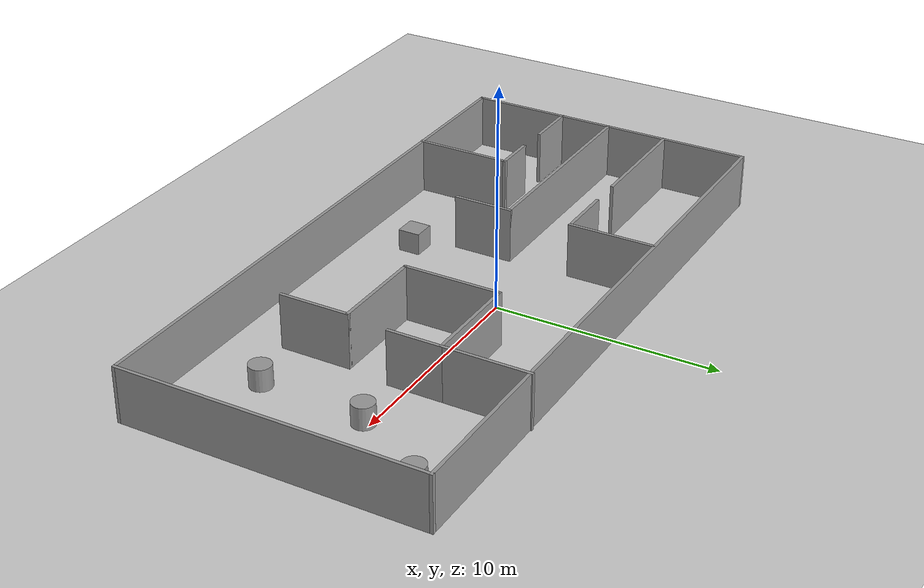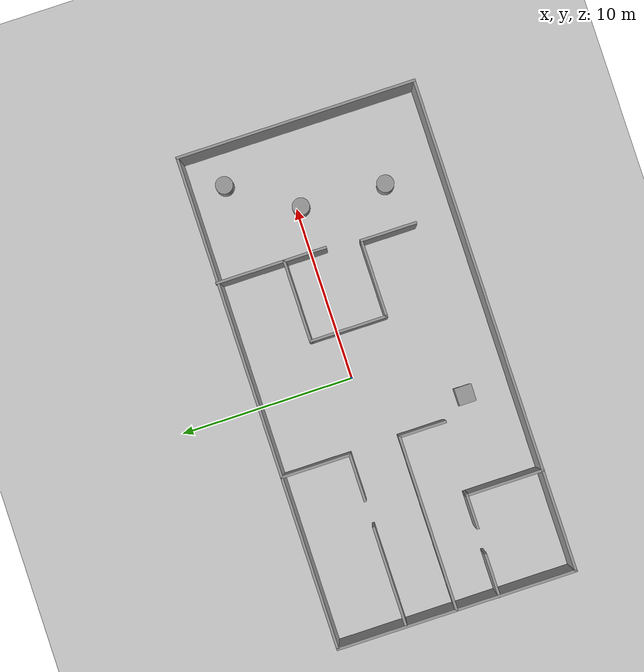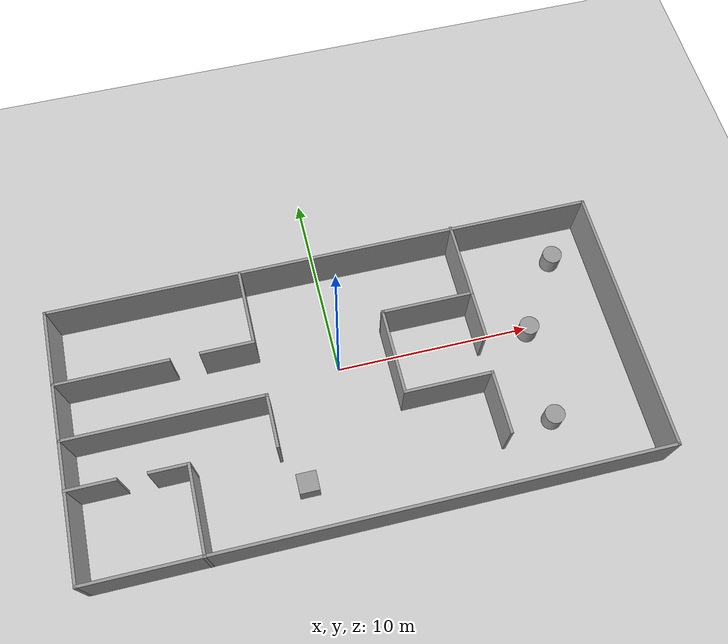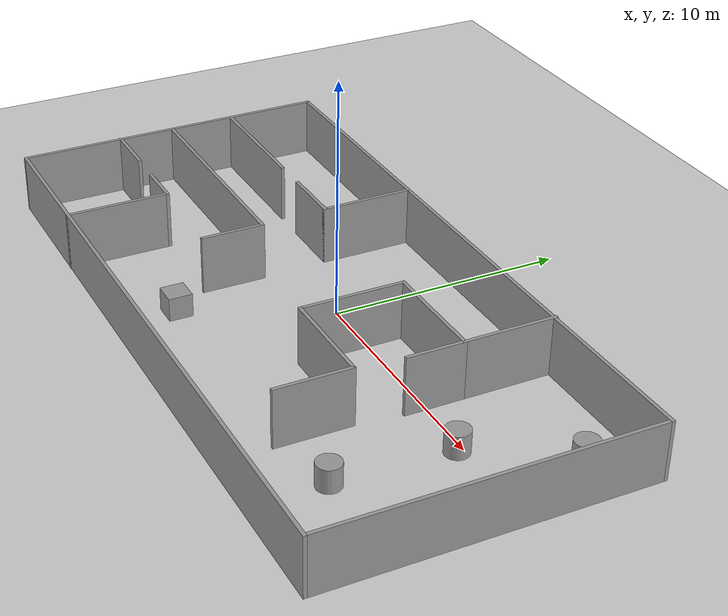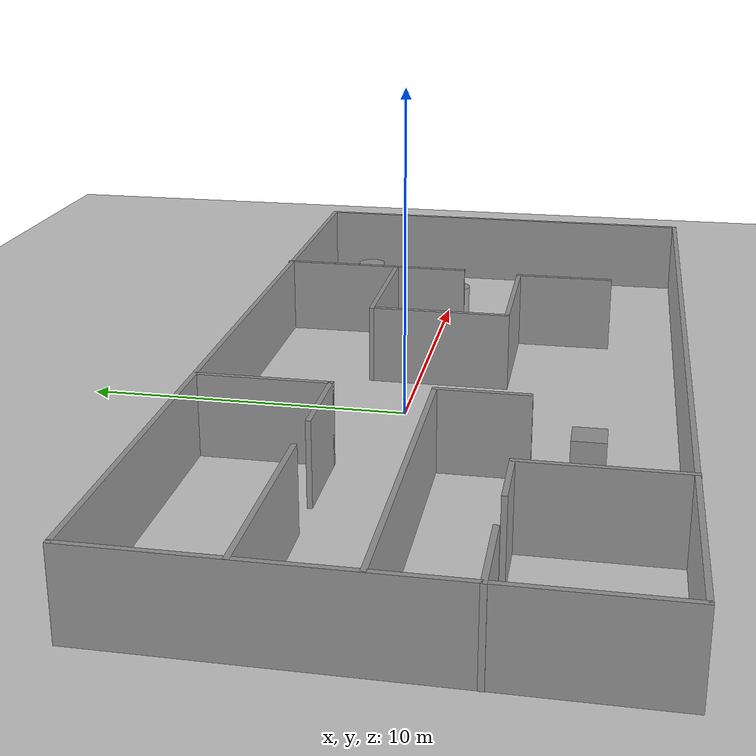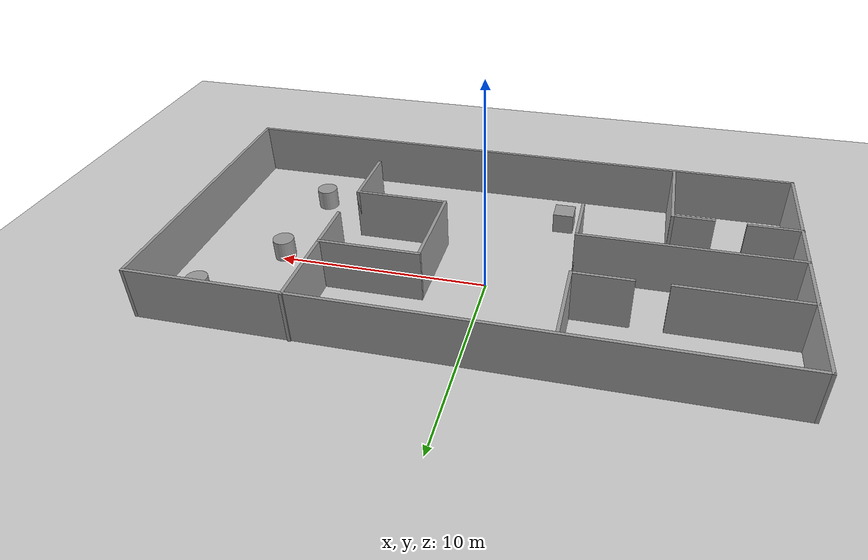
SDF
<sdf version="1.7">
 <world name="default">
  <light name="sun" type="directional">
   <pose>0 0 10 0 -0 0</pose>
   <diffuse>0.8 0.8 0.8 1</diffuse>
   <specular>0.2 0.2 0.2 1</specular>
   <attenuation>
    <range>1000</range>
    <constant>0.9</constant>
    <linear>0.01</linear>
    <quadratic>0.001</quadratic>
   </attenuation>
   <direction>-0.5 0.1 -0.9</direction>
   <spot><inner_angle>0</inner_angle><outer_angle>0</outer_angle><falloff>0</falloff></spot>
  </light>
  <model name="ground_plane">
   <static>1</static>
   <link name="link">
    <collision name="collision">
     <geometry><plane><normal>0 0 1</normal><size>100 100</size></plane></geometry>
     <surface><friction><ode><mu>100</mu><mu2>50</mu2></ode></friction></surface>
    </collision>
    <visual name="visual">
     <cast_shadows>0</cast_shadows>
     <geometry><plane><normal>0 0 1</normal><size>100 100</size></plane></geometry>
     <material>
      <script><uri>file://media/materials/scripts/gazebo.material</uri><name>Gazebo/Grey</name></script>
     </material>
    </visual>
   </link>
  </model>
  <gravity>0 0 -9.8</gravity>
  <magnetic_field>6e-06 2.3e-05 -4.2e-05</magnetic_field>
  <atmosphere type="adiabatic"/>
  <physics type="ode">
   <max_step_size>0.001</max_step_size>
   <real_time_factor>1</real_time_factor>
   <real_time_update_rate>1000</real_time_update_rate>
  </physics>
  <scene><ambient>0.4 0.4 0.4 1</ambient><background>0.7 0.7 0.7 1</background><shadows>1</shadows></scene>
  <audio><device>default</device></audio>
  <spherical_coordinates>
   <surface_model>EARTH_WGS84</surface_model>
   <latitude_deg>0</latitude_deg>
   <longitude_deg>0</longitude_deg>
   <elevation>0</elevation>
   <heading_deg>0</heading_deg>
  </spherical_coordinates>
  <model name="room1">
   <pose>0.3206 -1.46266 0 0 -0 0</pose>
   <link name="Wall_10">
    <collision name="Wall_10_Collision">
     <geometry><box><size>13.75 0.15 2.5</size></box></geometry>
     <pose>0 0 1.25 0 -0 0</pose>
    </collision>
    <visual name="Wall_10_Visual">
     <pose>0 0 1.25 0 -0 0</pose>
     <geometry><box><size>13.75 0.15 2.5</size></box></geometry>
     <material>
      <script><uri>file://media/materials/scripts/gazebo.material</uri><name>Gazebo/Grey</name></script>
      <ambient>1 1 1 1</ambient>
     </material>
     <meta><layer>0</layer></meta>
    </visual>
    <pose>14.0572 -0.023286 0 0 -0 -1.5708</pose>
   </link>
   <link name="Wall_12">
    <collision name="Wall_12_Collision">
     <geometry><box><size>5.75 0.15 2.5</size></box></geometry>
     <pose>0 0 1.25 0 -0 0</pose>
    </collision>
    <visual name="Wall_12_Visual">
     <pose>0 0 1.25 0 -0 0</pose>
     <geometry><box><size>5.75 0.15 2.5</size></box></geometry>
     <material>
      <script><uri>file://media/materials/scripts/gazebo.material</uri><name>Gazebo/Grey</name></script>
      <ambient>1 1 1 1</ambient>
     </material>
     <meta><layer>0</layer></meta>
    </visual>
    <pose>-11.2333 2.87432 0 0 -0 0</pose>
   </link>
   <link name="Wall_14">
    <collision name="Wall_14_Collision">
     <geometry><box><size>2.75 0.15 2.5</size></box></geometry>
     <pose>0 0 1.25 0 -0 0</pose>
    </collision>
    <visual name="Wall_14_Visual">
     <pose>0 0 1.25 0 -0 0</pose>
     <geometry><box><size>2.75 0.15 2.5</size></box></geometry>
     <material>
      <script><uri>file://media/materials/scripts/gazebo.material</uri><name>Gazebo/Grey</name></script>
      <ambient>1 1 1 1</ambient>
     </material>
     <meta><layer>0</layer></meta>
    </visual>
    <pose>-5.55129 2.87432 0 0 -0 0</pose>
   </link>
   <link name="Wall_17">
    <collision name="Wall_17_Collision">
     <geometry><box><size>4 0.15 2.5</size></box></geometry>
     <pose>0 0 1.25 0 -0 0</pose>
    </collision>
    <visual name="Wall_17_Visual">
     <pose>0 0 1.25 0 -0 0</pose>
     <geometry><box><size>4 0.15 2.5</size></box></geometry>
     <material>
      <script><uri>file://media/materials/scripts/gazebo.material</uri><name>Gazebo/Grey</name></script>
      <ambient>1 1 1 1</ambient>
     </material>
     <meta><layer>0</layer></meta>
    </visual>
    <pose>-4.25129 4.79932 0 0 -0 1.5708</pose>
   </link>
   <link name="Wall_19">
    <collision name="Wall_19_Collision">
     <geometry><box><size>10 0.15 2.5</size></box></geometry>
     <pose>0 0 1.25 0 -0 0</pose>
    </collision>
    <visual name="Wall_19_Visual">
     <pose>0 0 1.25 0 -0 0</pose>
     <geometry><box><size>10 0.15 2.5</size></box></geometry>
     <material>
      <script><uri>file://media/materials/scripts/gazebo.material</uri><name>Gazebo/Grey</name></script>
      <ambient>1 1 1 1</ambient>
     </material>
     <meta><layer>0</layer></meta>
    </visual>
    <pose>-9.08174 0.0015 0 0 -0 0</pose>
   </link>
   <link name="Wall_20">
    <collision name="Wall_20_Collision">
     <geometry><box><size>2.75 0.15 2.5</size></box></geometry>
     <pose>0 0 1.25 0 -0 0</pose>
    </collision>
    <visual name="Wall_20_Visual">
     <pose>0 0 1.25 0 -0 0</pose>
     <geometry><box><size>2.75 0.15 2.5</size></box></geometry>
     <material>
      <script><uri>file://media/materials/scripts/gazebo.material</uri><name>Gazebo/Grey</name></script>
      <ambient>1 1 1 1</ambient>
     </material>
     <meta><layer>0</layer></meta>
    </visual>
    <pose>-4.15674 -1.2985 0 0 -0 -1.5708</pose>
   </link>
   <link name="Wall_22">
    <collision name="Wall_22_Collision">
     <geometry><box><size>4.5 0.15 2.5</size></box></geometry>
     <pose>0 0 1.25 0 -0 0</pose>
    </collision>
    <visual name="Wall_22_Visual">
     <pose>0 0 1.25 0 -0 0</pose>
     <geometry><box><size>4.5 0.15 2.5</size></box></geometry>
     <material>
      <script><uri>file://media/materials/scripts/gazebo.material</uri><name>Gazebo/Grey</name></script>
      <ambient>1 1 1 1</ambient>
     </material>
     <meta><layer>0</layer></meta>
    </visual>
    <pose>-8.3143 -4.65975 0 0 -0 1.5708</pose>
   </link>
   <link name="Wall_23">
    <collision name="Wall_23_Collision">
     <geometry><box><size>2 0.15 2.5</size></box></geometry>
     <pose>0 0 1.25 0 -0 0</pose>
    </collision>
    <visual name="Wall_23_Visual">
     <pose>0 0 1.25 0 -0 0</pose>
     <geometry><box><size>2 0.15 2.5</size></box></geometry>
     <material>
      <script><uri>file://media/materials/scripts/gazebo.material</uri><name>Gazebo/Grey</name></script>
      <ambient>1 1 1 1</ambient>
     </material>
     <meta><layer>0</layer></meta>
    </visual>
    <pose>-9.2393 -2.48475 0 0 -0 3.14159</pose>
   </link>
   <link name="Wall_27">
    <collision name="Wall_27_Collision">
     <geometry><box><size>2.5 0.15 2.5</size></box></geometry>
     <pose>0 0 1.25 0 -0 0</pose>
    </collision>
    <visual name="Wall_27_Visual">
     <pose>0 0 1.25 0 -0 0</pose>
     <geometry><box><size>2.5 0.15 2.5</size></box></geometry>
     <material>
      <script><uri>file://media/materials/scripts/gazebo.material</uri><name>Gazebo/Grey</name></script>
      <ambient>1 1 1 1</ambient>
     </material>
     <meta><layer>0</layer></meta>
    </visual>
    <pose>-12.8822 -2.43909 0 0 -0 0</pose>
   </link>
   <link name="Wall_29">
    <collision name="Wall_29_Collision">
     <geometry><box><size>4 0.15 2.5</size></box></geometry>
     <pose>0 0 1.25 0 -0 0</pose>
    </collision>
    <visual name="Wall_29_Visual">
     <pose>0 0 1.25 0 -0 0</pose>
     <geometry><box><size>4 0.15 2.5</size></box></geometry>
     <material>
      <script><uri>file://media/materials/scripts/gazebo.material</uri><name>Gazebo/Grey</name></script>
      <ambient>1 1 1 1</ambient>
     </material>
     <meta><layer>0</layer></meta>
    </visual>
    <pose>6.89081 4.90975 0 0 -0 -1.5708</pose>
   </link>
   <link name="Wall_30">
    <collision name="Wall_30_Collision">
     <geometry><box><size>4.75 0.15 2.5</size></box></geometry>
     <pose>0 0 1.25 0 -0 0</pose>
    </collision>
    <visual name="Wall_30_Visual">
     <pose>0 0 1.25 0 -0 0</pose>
     <geometry><box><size>4.75 0.15 2.5</size></box></geometry>
     <material>
      <script><uri>file://media/materials/scripts/gazebo.material</uri><name>Gazebo/Grey</name></script>
      <ambient>1 1 1 1</ambient>
     </material>
     <meta><layer>0</layer></meta>
    </visual>
    <pose>4.59081 2.98475 0 0 -0 3.14159</pose>
   </link>
   <link name="Wall_31">
    <collision name="Wall_31_Collision">
     <geometry><box><size>4.5 0.15 2.5</size></box></geometry>
     <pose>0 0 1.25 0 -0 0</pose>
    </collision>
    <visual name="Wall_31_Visual">
     <pose>0 0 1.25 0 -0 0</pose>
     <geometry><box><size>4.5 0.15 2.5</size></box></geometry>
     <material>
      <script><uri>file://media/materials/scripts/gazebo.material</uri><name>Gazebo/Grey</name></script>
      <ambient>1 1 1 1</ambient>
     </material>
     <meta><layer>0</layer></meta>
    </visual>
    <pose>2.29081 0.809751 0 0 -0 -1.5708</pose>
   </link>
   <link name="Wall_32">
    <collision name="Wall_32_Collision">
     <geometry><box><size>4.5 0.15 2.5</size></box></geometry>
     <pose>0 0 1.25 0 -0 0</pose>
    </collision>
    <visual name="Wall_32_Visual">
     <pose>0 0 1.25 0 -0 0</pose>
     <geometry><box><size>4.5 0.15 2.5</size></box></geometry>
     <material>
      <script><uri>file://media/materials/scripts/gazebo.material</uri><name>Gazebo/Grey</name></script>
      <ambient>1 1 1 1</ambient>
     </material>
     <meta><layer>0</layer></meta>
    </visual>
    <pose>4.46581 -1.36525 0 0 -0 0</pose>
   </link>
   <link name="Wall_33">
    <collision name="Wall_33_Collision">
     <geometry><box><size>3.25 0.15 2.5</size></box></geometry>
     <pose>0 0 1.25 0 -0 0</pose>
    </collision>
    <visual name="Wall_33_Visual">
     <pose>0 0 1.25 0 -0 0</pose>
     <geometry><box><size>3.25 0.15 2.5</size></box></geometry>
     <material>
      <script><uri>file://media/materials/scripts/gazebo.material</uri><name>Gazebo/Grey</name></script>
      <ambient>1 1 1 1</ambient>
     </material>
     <meta><layer>0</layer></meta>
    </visual>
    <pose>6.64081 -2.91525 0 0 -0 -1.5708</pose>
   </link>
   <link name="Wall_35">
    <collision name="Wall_35_Collision">
     <geometry><box><size>2.5 0.15 2.5</size></box></geometry>
     <pose>0 0 1.25 0 -0 0</pose>
    </collision>
    <visual name="Wall_35_Visual">
     <pose>0 0 1.25 0 -0 0</pose>
     <geometry><box><size>2.5 0.15 2.5</size></box></geometry>
     <material>
      <script><uri>file://media/materials/scripts/gazebo.material</uri><name>Gazebo/Grey</name></script>
      <ambient>1 1 1 1</ambient>
     </material>
     <meta><layer>0</layer></meta>
    </visual>
    <pose>6.89081 1.80975 0 0 -0 -1.5708</pose>
   </link>
   <link name="Wall_6">
    <collision name="Wall_6_Collision">
     <geometry><box><size>28.25 0.15 2.5</size></box></geometry>
     <pose>0 0 1.25 0 -0 0</pose>
    </collision>
    <visual name="Wall_6_Visual">
     <pose>0 0 1.25 0 -0 0</pose>
     <geometry><box><size>28.25 0.15 2.5</size></box></geometry>
     <material>
      <script><uri>file://media/materials/scripts/gazebo.material</uri><name>Gazebo/Grey</name></script>
      <ambient>1 1 1 1</ambient>
     </material>
     <meta><layer>0</layer></meta>
    </visual>
    <pose>0.007244 -6.82329 0 0 -0 3.14159</pose>
   </link>
   <link name="Wall_7">
    <collision name="Wall_7_Collision">
     <geometry><box><size>13.75 0.15 2.5</size></box></geometry>
     <pose>0 0 1.25 0 -0 0</pose>
    </collision>
    <visual name="Wall_7_Visual">
     <pose>0 0 1.25 0 -0 0</pose>
     <geometry><box><size>13.75 0.15 2.5</size></box></geometry>
     <material>
      <script><uri>file://media/materials/scripts/gazebo.material</uri><name>Gazebo/Grey</name></script>
      <ambient>1 1 1 1</ambient>
     </material>
     <meta><layer>0</layer></meta>
    </visual>
    <pose>-14.0428 -0.023286 0 0 -0 1.5708</pose>
   </link>
   <link name="Wall_8">
    <collision name="Wall_8_Collision">
     <geometry><box><size>28.25 0.15 2.5</size></box></geometry>
     <pose>0 0 1.25 0 -0 0</pose>
    </collision>
    <visual name="Wall_8_Visual">
     <pose>0 0 1.25 0 -0 0</pose>
     <geometry><box><size>28.25 0.15 2.5</size></box></geometry>
     <material>
      <script><uri>file://media/materials/scripts/gazebo.material</uri><name>Gazebo/Grey</name></script>
      <ambient>1 1 1 1</ambient>
     </material>
     <meta><layer>0</layer></meta>
    </visual>
    <pose>0.007244 6.77671 0 0 -0 0</pose>
   </link>
   <static>1</static>
  </model>
  <model name="unit_box">
   <pose>-2.8237 -5.67239 0.5 -0 -0 -0</pose>
   <link name="link">
    <inertial>
     <mass>1</mass>
     <inertia>
      <ixx>0.166667</ixx>
      <ixy>0</ixy>
      <ixz>0</ixz>
      <iyy>0.166667</iyy>
      <iyz>0</iyz>
      <izz>0.166667</izz>
     </inertia>
    </inertial>
    <collision name="collision"><geometry><box><size>1 1 1</size></box></geometry></collision>
    <visual name="visual">
     <geometry><box><size>1 1 1</size></box></geometry>
     <material>
      <script><name>Gazebo/Grey</name><uri>file://media/materials/scripts/gazebo.material</uri></script>
     </material>
    </visual>
   </link>
  </model>
  <model name="unit_cylinder">
   <pose>9.96292 -0.267385 0.499997 3e-06 4e-06 -0</pose>
   <link name="link">
    <inertial>
     <mass>1</mass>
     <inertia><ixx>0.145833</ixx><ixy>0</ixy><ixz>0</ixz><iyy>0.145833</iyy><iyz>0</iyz><izz>0.125</izz></inertia>
    </inertial>
    <collision name="collision">
     <geometry><cylinder><radius>0.5</radius><length>1</length></cylinder></geometry>
    </collision>
    <visual name="visual">
     <geometry><cylinder><radius>0.5</radius><length>1</length></cylinder></geometry>
     <material>
      <script><name>Gazebo/Grey</name><uri>file://media/materials/scripts/gazebo.material</uri></script>
     </material>
    </visual>
   </link>
  </model>
  <model name="unit_cylinder_0">
   <pose>9.70837 -5.13018 0.499997 3e-06 4e-06 -0</pose>
   <link name="link">
    <inertial>
     <mass>1</mass>
     <inertia><ixx>0.145833</ixx><ixy>0</ixy><ixz>0</ixz><iyy>0.145833</iyy><iyz>0</iyz><izz>0.125</izz></inertia>
    </inertial>
    <collision name="collision">
     <geometry><cylinder><radius>0.5</radius><length>1</length></cylinder></geometry>
    </collision>
    <visual name="visual">
     <geometry><cylinder><radius>0.5</radius><length>1</length></cylinder></geometry>
     <material>
      <script><name>Gazebo/Grey</name><uri>file://media/materials/scripts/gazebo.material</uri></script>
     </material>
    </visual>
   </link>
  </model>
  <model name="unit_cylinder_1">
   <pose>12.419 3.4131 0.499997 3e-06 4e-06 -0</pose>
   <link name="link">
    <inertial>
     <mass>1</mass>
     <inertia><ixx>0.145833</ixx><ixy>0</ixy><ixz>0</ixz><iyy>0.145833</iyy><iyz>0</iyz><izz>0.125</izz></inertia>
    </inertial>
    <collision name="collision">
     <geometry><cylinder><radius>0.5</radius><length>1</length></cylinder></geometry>
    </collision>
    <visual name="visual">
     <geometry><cylinder><radius>0.5</radius><length>1</length></cylinder></geometry>
     <material>
      <script><name>Gazebo/Grey</name><uri>file://media/materials/scripts/gazebo.material</uri></script>
     </material>
    </visual>
   </link>
  </model>
 </world>
</sdf>
